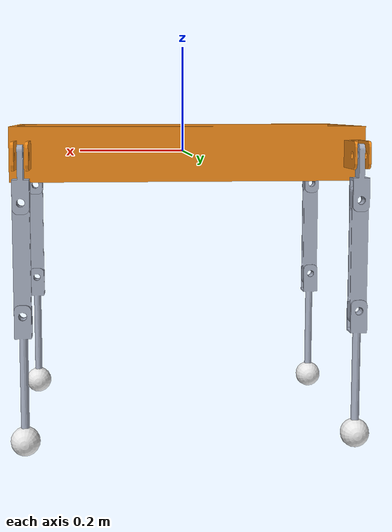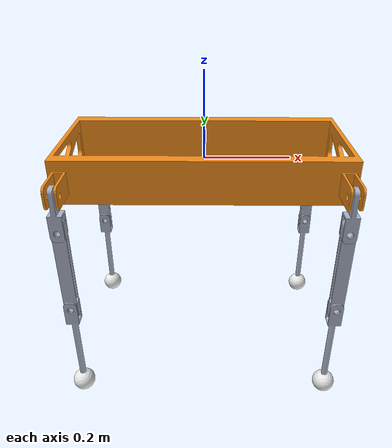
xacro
<?xml version="1.0"?>

<robot name="quadroit_v1" xmlns:xacro="http://www.ros.org/wiki/xacro">

    <xacro:include filename="$(find quadroit_v1)/xacro/const.xacro"/>
    <xacro:include filename="$(find quadroit_v1)/xacro/materials.xacro"/>
    <xacro:include filename="$(find quadroit_v1)/xacro/leg.xacro"/>

    <!-- Rollover Protection mode will add an additional stick on the top, use "true" or "false" to switch it. -->
    <xacro:property name="rolloverProtection" value="false"/>

    <!-- Debug mode will hung up the robot, use "true" or "false" to switch it. -->

    <link name="base">
        <visual>
            <origin rpy="0 0 0" xyz="0 0 0"/>
            <geometry>
                <box size="0.001 0.001 0.001"/>
            </geometry>
        </visual>
    </link>

    <joint name="floating_base" type="fixed">
        <origin rpy="0 0 0" xyz="0 0 0"/>
        <parent link="base"/>
        <child link="torso"/>
    </joint>

    <link name="torso">
        <visual>
            <origin rpy="0 0 0" xyz="0 0 0"/>
            <geometry>
                <mesh filename="package://quadroit_v1/meshes/base_link_torso.STL" scale="1 1 1"/>
            </geometry>
            <material name="orange"/>
        </visual>
        <collision>
            <origin rpy="0 0 0" xyz="0 0 ${torso_offset_z}"/>
            <geometry>
                <box size="${torso_length} ${torso_width} ${torso_height}"/>
            </geometry>
        </collision>
        <inertial>
            <origin rpy="0 0 0" xyz="${torso_com_x} ${torso_com_y} ${torso_com_z}"/>
            <mass value="${torso_mass}"/>
            <inertia
                ixx="${torso_ixx}" ixy="${torso_ixy}" ixz="${torso_ixz}"
                iyy="${torso_iyy}" iyz="${torso_iyz}"
                izz="${torso_izz}"/>
        </inertial>
    </link>

    <xacro:if value="${(rolloverProtection == 'true')}">
        <joint name="stick_joint" type="fixed">
            <parent link="torso"/>
            <child link="stick_link"/>
            <origin rpy="0 0 0" xyz="${0.18} 0 ${stick_length/2.0+0.08}"/>
        </joint>

        <link name="stick_link">
            <visual>
                <geometry>
                    <cylinder length="${stick_length}" radius="${stick_radius}"/>
                </geometry>
                <origin rpy="0 0 0" xyz="0 0 0"/>
                <material name="white"/>
            </visual>
            <collision>
                <geometry>
                    <cylinder length="${stick_length}" radius="${stick_radius}"/>
                </geometry>
                <origin rpy="0 0 0" xyz="0 0 0"/>
            </collision>
            <inertial>
                <mass value="${stick_mass}"/>
                <inertia
                    ixx="${stick_mass / 2.0 * (stick_radius*stick_radius)}" ixy="0.0" ixz="0.0"
                    iyy="${stick_mass / 12.0 * (3*stick_radius*stick_radius + stick_length*stick_length)}" iyz="0.0"
                    izz="${stick_mass / 12.0 * (3*stick_radius*stick_radius + stick_length*stick_length)}"/>
            </inertial>
        </link>
    </xacro:if>

    <joint name="imu_joint" type="fixed">
        <parent link="torso"/>
        <child link="imu_link"/>
        <origin rpy="0 0 0" xyz="0 0 0"/>
    </joint>

    <link name="imu_link">
        <inertial>
            <mass value="0.001"/>
            <origin rpy="0 0 0" xyz="0 0 0"/>
            <inertia ixx="0.0001" ixy="0" ixz="0" iyy="0.000001" iyz="0" izz="0.0001"/>
        </inertial>
        <visual>
            <origin rpy="0 0 0" xyz="0 0 0"/>
            <geometry>
                <box size="0.001 0.001 0.001"/>
            </geometry>
            <material name="red"/>
        </visual>
        <collision>
            <origin rpy="0 0 0" xyz="0 0 0"/>
            <geometry>
                <box size=".001 .001 .001"/>
            </geometry>
        </collision>
    </link>

    <xacro:leg suffix="fl" front="1" left="1" />
    <xacro:leg suffix="fr" front="1" left="-1" />
    <xacro:leg suffix="rl" front="-1" left="1" />
    <xacro:leg suffix="rr" front="-1" left="-1" />

</robot>

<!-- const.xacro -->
<robot name="laikago_description" xmlns:xacro="http://www.ros.org/wiki/xacro">

    <!-- Constants for robot dimensions -->
    <xacro:property name="PI" value="3.1415926535897931"/>
    <xacro:property name="stick_mass" value="0.00001"/>

    <xacro:property name="hip_len" value="0.08" />
    <xacro:property name="thigh_len" value="0.2" />
    <xacro:property name="shank_len" value="0.23" />
    <xacro:property name="link_radius" value="0.0025"/>
    <xacro:property name="foot_radius" value="0.0025"/>
    <xacro:property name="pi" value="3.1415" />
    <xacro:property name="body_len" value="0.6" />
    <xacro:property name="body_width" value="0.42" />
    <xacro:property name="body_height" value="0.02" />

    <!-- simplified collision value -->
    <xacro:property name="torso_width" value="0.42"/>
    <xacro:property name="torso_length" value="0.6"/>
    <xacro:property name="torso_height" value="0.02"/>
    <xacro:property name="hip_radius" value="0.041"/>
    <xacro:property name="hip_length" value="0.08"/>
    <xacro:property name="thigh_shoulder_radius" value="0.044"/>
    <xacro:property name="thigh_shoulder_length" value="0.08"/>
    <xacro:property name="thigh_width" value="0.034"/>
    <xacro:property name="thigh_height" value="0.043"/>
    <xacro:property name="shank_width" value="0.016"/>
    <xacro:property name="shank_height" value="0.016"/>
    <xacro:property name="foot_radius" value="0.0265"/>
    <xacro:property name="stick_radius" value="0.01"/>
    <xacro:property name="stick_length" value="0.2"/>

    <!-- kinematic value -->
    <xacro:property name="thigh_offset" value="0.037"/>
    <xacro:property name="thigh_length" value="0.25"/>
    <xacro:property name="shank_length" value="0.25"/>

    <!-- leg offset from torso center value -->
    <xacro:property name="leg_offset_x" value="0.21935"/>
    <xacro:property name="leg_offset_y" value="0.0875"/>
    <xacro:property name="torso_offset_z" value="0"/>
    <xacro:property name="hip_offset" value="0.019"/>

    <!-- joint limits -->
    <xacro:property name="damping" value="0"/>
    <xacro:property name="friction" value="0"/>
    <xacro:property name="hip_max" value="60"/>
    <xacro:property name="hip_min" value="-50"/>
    <xacro:property name="hip_velocity_max" value="52.4"/>
    <xacro:property name="hip_torque_max" value="20"/>
    <xacro:property name="thigh_max" value="225"/>
    <xacro:property name="thigh_min" value="-30"/>
    <xacro:property name="thigh_velocity_max" value="28.6"/>
    <xacro:property name="thigh_torque_max" value="55"/>
    <xacro:property name="shank_max" value="-35"/>
    <xacro:property name="shank_min" value="-159"/>
    <xacro:property name="shank_velocity_max" value="28.6"/>
    <xacro:property name="shank_torque_max" value="55"/>

    <!-- dynamics inertial value -->
    <!-- torso -->
    <xacro:property name="torso_mass" value="10"/>
    <xacro:property name="torso_com_x" value="0"/>
    <xacro:property name="torso_com_y" value="0"/>
    <xacro:property name="torso_com_z" value="0"/>
    <xacro:property name="torso_ixx" value="1"/>
    <xacro:property name="torso_ixy" value="0"/>
    <xacro:property name="torso_ixz" value="0"/>
    <xacro:property name="torso_iyy" value="1"/>
    <xacro:property name="torso_iyz" value="0"/>
    <xacro:property name="torso_izz" value="1"/>

    <!-- hip (left front) -->
    <xacro:property name="hip_mass" value="1.096"/>
    <xacro:property name="hip_com_x" value="-0.001568"/>
    <xacro:property name="hip_com_y" value="-0.008134"/>
    <xacro:property name="hip_com_z" value="0.000864"/>
    <xacro:property name="hip_ixx" value="0.000822113"/>
    <xacro:property name="hip_ixy" value="-0.000004982"/>
    <xacro:property name="hip_ixz" value="-0.00003672"/>
    <xacro:property name="hip_iyy" value="0.000983196"/>
    <xacro:property name="hip_iyz" value="0.000002811"/>
    <xacro:property name="hip_izz" value="0.000864753"/>

    <!-- thigh -->
    <xacro:property name="thigh_mass" value="1.528"/>
    <xacro:property name="thigh_com_x" value="-0.000482"/>
    <xacro:property name="thigh_com_y" value="0.02001"/>
    <xacro:property name="thigh_com_z" value="-0.031996"/>
    <xacro:property name="thigh_ixx" value="0.00991611"/>
    <xacro:property name="thigh_ixy" value="0.000010388"/>
    <xacro:property name="thigh_ixz" value="0.000250428"/>
    <xacro:property name="thigh_iyy" value="0.009280083"/>
    <xacro:property name="thigh_iyz" value="-0.00008511"/>
    <xacro:property name="thigh_izz" value="0.00178256"/>

    <!-- shank -->
    <xacro:property name="shank_mass" value="0.241"/>
    <xacro:property name="shank_com_x" value="-0.002196"/>
    <xacro:property name="shank_com_y" value="-0.000381"/>
    <xacro:property name="shank_com_z" value="-0.12338"/>
    <xacro:property name="shank_ixx" value="0.006181961"/>
    <xacro:property name="shank_ixy" value="0.000000237"/>
    <xacro:property name="shank_ixz" value="-0.000002985"/>
    <xacro:property name="shank_iyy" value="0.006196546"/>
    <xacro:property name="shank_iyz" value="0.000005138"/>
    <xacro:property name="shank_izz" value="0.000034774"/>

    <!-- foot -->
    <xacro:property name="foot_mass" value="0.06"/>

</robot>

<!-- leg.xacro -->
<robot xmlns:xacro="http://www.ros.org/wiki/xacro">

    <xacro:include filename="$(find quadroit_v1)/xacro/transmission.xacro"/>

    <xacro:macro name="default_inertial" params="mass">
        <inertial>
            <mass value="${mass}" />
            <inertia ixx="1.0" ixy="0.0" ixz="0.0" iyy="1.0" iyz="0.0" izz="1.0" />
        </inertial>
    </xacro:macro>

    <xacro:macro name="leg" params="suffix front left">

        <link name="hip_link_${suffix}">
            <inertial>
                <origin
                    xyz="0.04 0 0"
                    rpy="0 0 0" />
                <mass
                    value="2" />
                <inertia ixx="1.0" ixy="0.0" ixz="0.0" iyy="1.0" iyz="0.0" izz="1.0" />
            </inertial>
            <visual>
                <origin
                    xyz="0 0 0"
                    rpy="0 0 0" />
                <geometry>
                <mesh
                    filename="package://quadroit_v1/meshes/leg_fr_hip.STL" />
                </geometry>
                <material name="">
                    <color rgba="0.66667 0.69804 0.76863 1" />
                </material>
            </visual>
            <collision>
                <origin
                    xyz="0 0 0"
                    rpy="0 0 0" />
                <geometry>
                <mesh
                    filename="package://quadroit_v1/meshes/leg_fr_hip.STL" />
                </geometry>
            </collision>
        </link>

        <joint name="hip_joint_${suffix}" type="revolute">
            <axis xyz="0 0 1"/>
            <limit effort="1000.0" lower="${-0.5*pi}" upper="${0.5*pi}" velocity="0.5"/>
            <parent link="torso"/>
            <child link="hip_link_${suffix}"/>
            <dynamics damping="${damping}" friction="${friction}"/>
            <origin
                xyz="${0.5*body_len*front} ${left*0.5*body_width} 0"
                rpy = "${0.5*pi} ${0.5*pi} ${0.5*pi}"/>
        </joint>

        <link name="thigh_link_${suffix}">
            <inertial>
                <origin
                    xyz="0.1 0 0"
                    rpy="0 0 0" />
                <mass
                    value="2" />
                <inertia ixx="1.0" ixy="0.0" ixz="0.0" iyy="1.0" iyz="0.0" izz="1.0" />
            </inertial>
            <visual>
                <origin
                    xyz="0 0 0"
                    rpy="0 0 0" />
                <geometry>
                <mesh
                    filename="package://quadroit_v1/meshes/leg_fr_thigh.STL" />
                </geometry>
                <material name="">
                    <color rgba="0.66667 0.69804 0.76863 1" />
                </material>
            </visual>
            <collision>
                <origin
                    xyz="0 0 0"
                    rpy="0 0 0" />
                <geometry>
                <mesh
                    filename="package://quadroit_v1/meshes/leg_fr_thigh.STL" />
                </geometry>
            </collision>
        </link>

        <joint name="elbow_joint_${suffix}" type="revolute">
            <axis xyz="0 0 1"/>
            <limit effort="1000.0" lower="${-0.5*pi}" upper="${0.5*pi}" velocity="0.5"/>
            <parent link="hip_link_${suffix}"/>
            <child link="thigh_link_${suffix}"/>
            <dynamics damping="${damping}" friction="${friction}"/>
            <origin
                xyz="${hip_len} 0 0"
                rpy = "${0.5*pi} 0 0"/>
        </joint>

        <link name="shank_link_${suffix}">
            <inertial>
                <origin
                    xyz="0.11 0 0"
                    rpy="0 0 0" />
                <mass
                    value="2" />
                <inertia ixx="1.0" ixy="0.0" ixz="0.0" iyy="1.0" iyz="0.0" izz="1.0" />
            </inertial>
            <visual>
                <origin
                    xyz="0 0 0"
                    rpy="0 0 0" />
                <geometry>
                <mesh
                    filename="package://quadroit_v1/meshes/leg_fr_shank.STL" />
                </geometry>
                <material name="">
                    <color rgba="0.66667 0.69804 0.76863 1" />
                </material>
            </visual>
            <collision>
                <origin
                    xyz="0 0 0"
                    rpy="0 0 0" />
                <geometry>
                <mesh
                    filename="package://quadroit_v1/meshes/leg_fr_shank.STL" />
                </geometry>
            </collision>
        </link>

        <joint name="wrist_joint_${suffix}" type="revolute">
            <axis xyz="0 0 1"/>
            <limit effort="1000.0" lower="${-0.5*pi}" upper="${0.5*pi}" velocity="0.5"/>
            <parent link="thigh_link_${suffix}"/>
            <child link="shank_link_${suffix}"/>
            <dynamics damping="${damping}" friction="${friction}"/>
            <origin
                xyz="${thigh_len} 0 0"
                rpy = "0 0 0"/>
        </joint>

        <link name="foot_link_${suffix}">
            <visual>
                <geometry>
                    <sphere radius="${foot_radius}"/>
                </geometry>
                <origin rpy="0 0 0" xyz="0 0 0"/>
                <material name="white"/>
            </visual>
            <xacro:default_inertial mass="0.2"/>
        </link>

        <joint name="foot_${suffix}" type="fixed">
            <parent link="shank_link_${suffix}"/>
            <child link="foot_link_${suffix}"/>
            <dynamics damping="${damping}" friction="${friction}"/>
            <origin
                xyz="${shank_len} 0 0"
                rpy = "0 0 0"/>
        </joint>

        <xacro:leg_transmission suffix="${suffix}"/>
        <!-- params or suffix -->
    </xacro:macro>

</robot>
